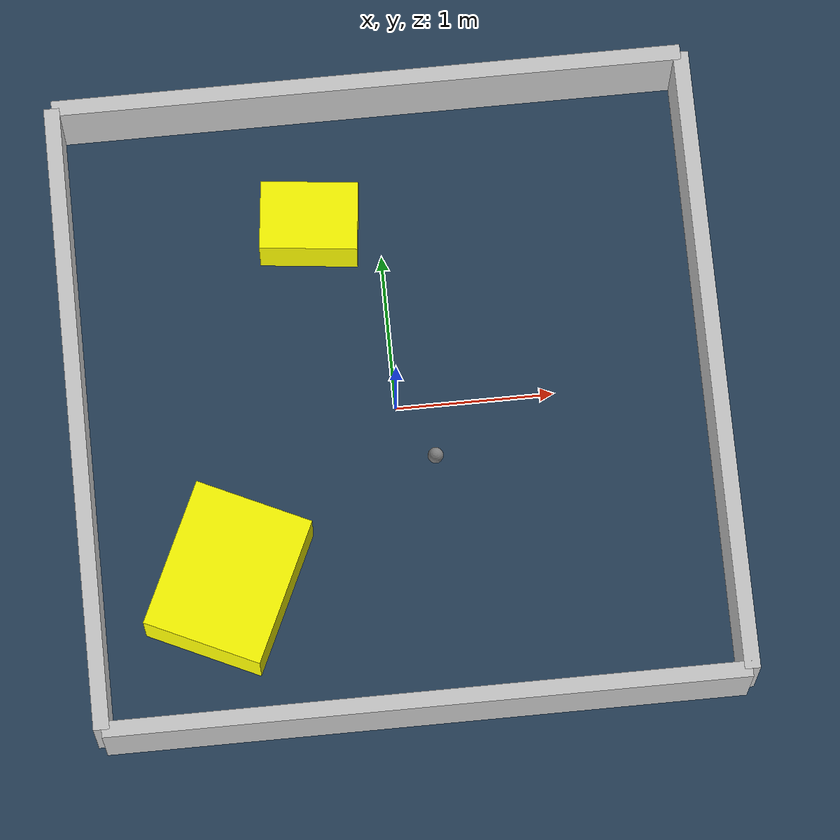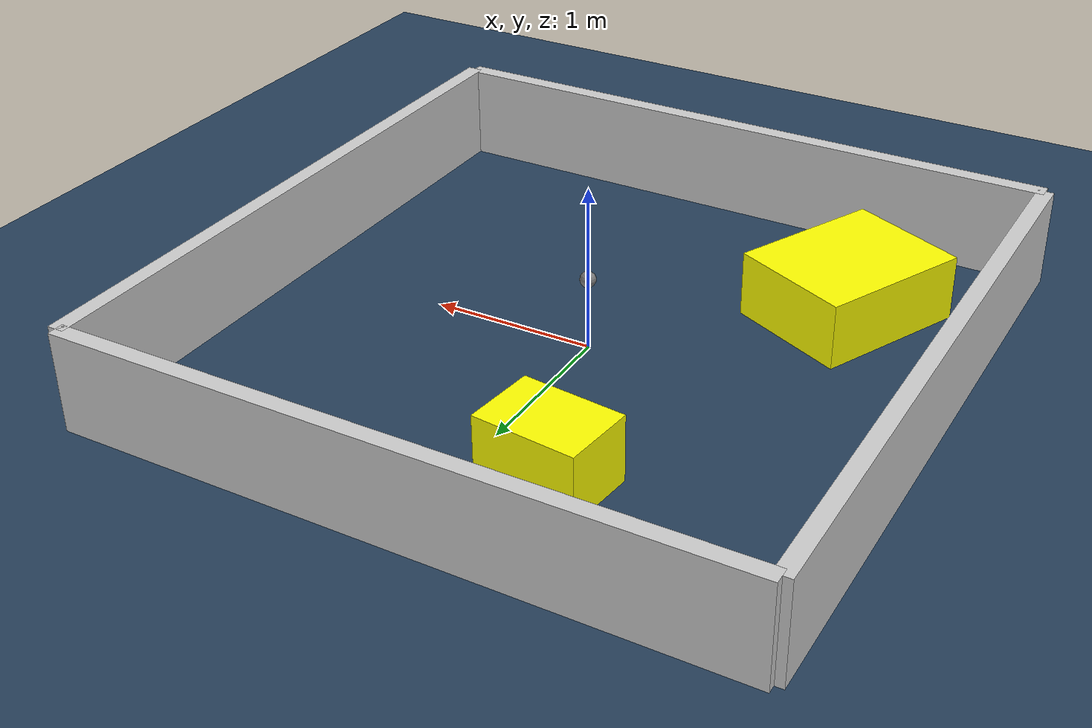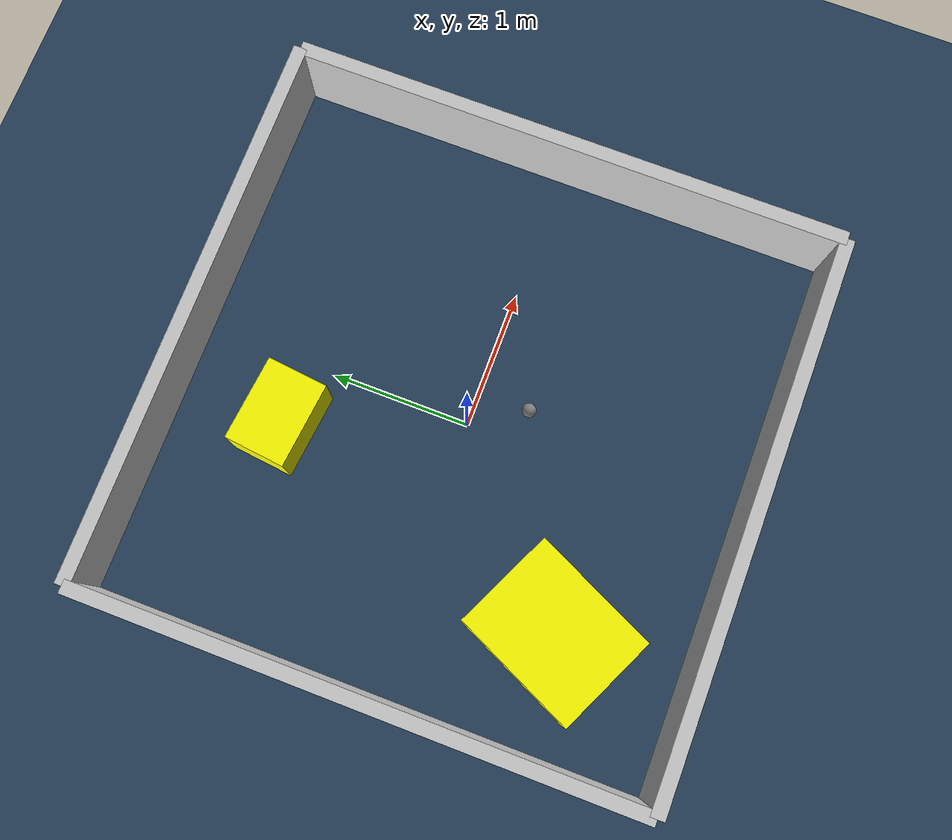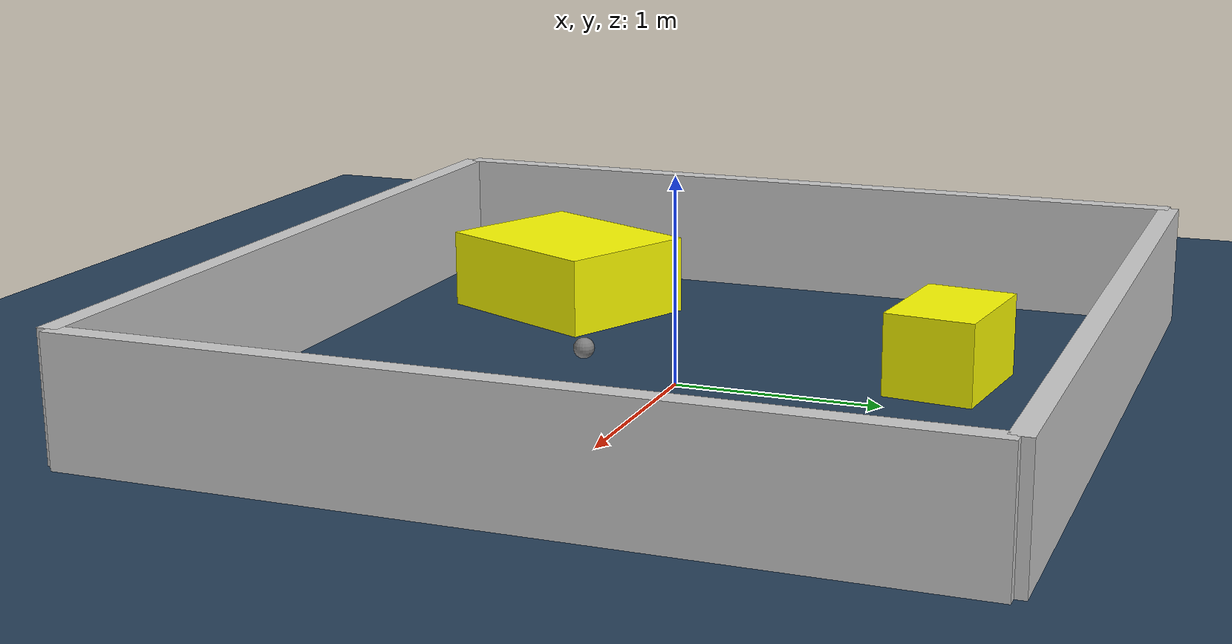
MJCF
<?xml version="1.0" ?>
<mujoco model="generated_environment">
  <option timestep="0.01" integrator="RK4" cone="elliptic"/>
  <default>
    <geom density="1"/>
  </default>
  <asset>
    <texture builtin="gradient" height="3072" rgb1="0.3 0.5 0.7" rgb2="0 0 0" type="skybox" width="512"/>
    <texture builtin="checker" height="300" mark="edge" markrgb="0.8 0.8 0.8" name="groundplane" rgb1="0.2 0.3 0.4" rgb2="0.1 0.2 0.3" type="2d" width="300"/>
    <material name="groundplane" reflectance="0.2" texrepeat="5 5" texture="groundplane" texuniform="true"/>
    <material name="robot" rgba="0.0 1.0 0.0 1"/>
  </asset>
  <worldbody>
    <light dir="0 0 -1" directional="true" pos="0 0 1.5"/>
    <geom condim="4" friction="1.0 0.005 0.001" material="groundplane" name="floor" size="0 0 0.05" type="plane"/>
    <body name="walls">
      <geom name="wall_1" condim="4" pos="-2.0 0.0 0.3" rgba="0.800000011920929 0.800000011920929 0.800000011920929 1.0" size="0.05 2.0 0.3" type="box"/>
      <geom name="wall_2" condim="4" pos="2.0 0.0 0.3" rgba="0.800000011920929 0.800000011920929 0.800000011920929 1.0" size="0.05 2.0 0.3" type="box"/>
      <geom name="wall_3" condim="4" pos="0.0 -2.0 0.3" rgba="0.800000011920929 0.800000011920929 0.800000011920929 1.0" size="2.0 0.05 0.3" type="box"/>
      <geom name="wall_4" condim="4" pos="0.0 2.0 0.3" rgba="0.800000011920929 0.800000011920929 0.800000011920929 1.0" size="2.0 0.05 0.3" type="box"/>
    </body>
    <body name="robot">
      <joint name="joint_x" type="slide" pos="0 0 0" axis="1 0 0"/>
      <joint name="joint_y" type="slide" pos="0 0 0" axis="0 1 0"/>
      <geom name="robot" type="sphere" pos="0.21204955231256117 -0.37881106476929305 0.2" size="0.05" mass="5." friction="1.0 0.005 0.0001" condim="4"/>
      <site name="sensor_ball"/>
    </body>
    <body name="obstacle_1_movable">
      <geom name="obstacle_1_movable" condim="4" pos="-0.44098507609630233 1.207712467484015 0.2" euler="0 0 83.68276583831555" friction="1.0 0.005 0.001" rgba="1 1 0 1" size="0.22000720745871397 0.3094290596176808 0.2" type="box" mass="0.1"/>
      <joint type="free"/>
    </body>
    <body name="obstacle_2_movable">
      <geom name="obstacle_2_movable" condim="4" pos="-1.1490087655540302 -1.0453402033109005 0.2" euler="0 0 335.0096165220074" friction="1.0 0.005 0.001" rgba="1 1 0 1" size="0.3834155337153783 0.4788241737720808 0.2" type="box" mass="0.1"/>
      <joint type="free"/>
    </body>
  </worldbody>
  <actuator>
    <motor name="actuator_x" joint="joint_x" gear="1" ctrlrange="-1 1"/>
    <motor name="actuator_y" joint="joint_y" gear="1" ctrlrange="-1 1"/>
  </actuator>
</mujoco>
